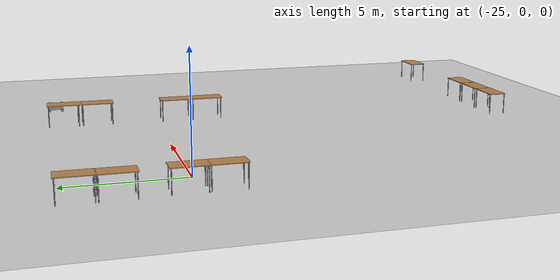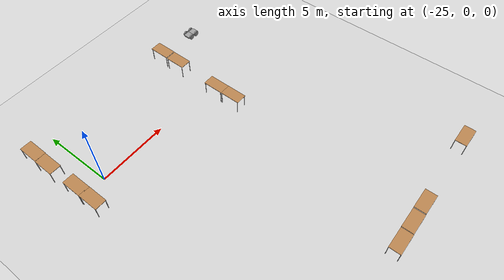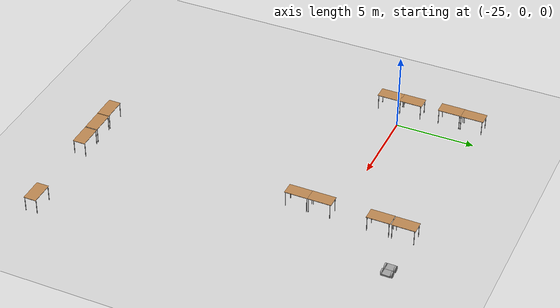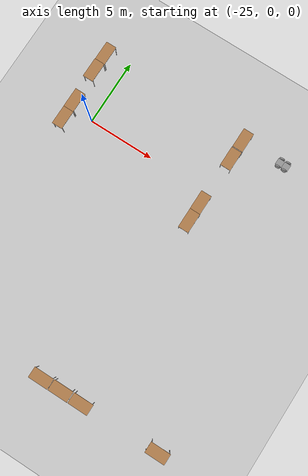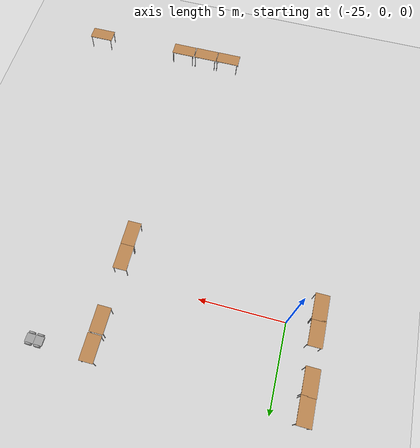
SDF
<sdf version="1.6">
 <world name="default">
  <model name="ground_plane">
   <static>1</static>
   <link name="link">
    <collision name="collision">
     <geometry><plane><normal>0 0 1</normal><size>100 100</size></plane></geometry>
     <surface><friction><ode><mu>100</mu><mu2>50</mu2></ode></friction></surface>
    </collision>
    <visual name="visual">
     <cast_shadows>0</cast_shadows>
     <geometry><plane><normal>0 0 1</normal><size>100 100</size></plane></geometry>
     <material>
      <script><uri>file://media/materials/scripts/gazebo.material</uri><name>Gazebo/Grey</name></script>
     </material>
    </visual>
   </link>
  </model>
  <model name="table_clone_12">
   <static>1</static>
   <link name="link">
    <collision name="surface">
     <pose>0 0 1 0 -0 0</pose>
     <geometry><box><size>1.5 0.8 0.03</size></box></geometry>
     <surface><friction><ode><mu>0.6</mu><mu2>0.6</mu2></ode></friction></surface>
    </collision>
    <visual name="visual1">
     <pose>0 0 1 0 -0 0</pose>
     <geometry><box><size>1.5 0.8 0.03</size></box></geometry>
     <material>
      <script><uri>file://media/materials/scripts/gazebo.material</uri><name>Gazebo/Wood</name></script>
     </material>
    </visual>
    <collision name="front_left_leg">
     <pose>0.68 0.38 0.5 0 -0 0</pose>
     <geometry><cylinder><radius>0.02</radius><length>1</length></cylinder></geometry>
    </collision>
    <visual name="front_left_leg">
     <pose>0.68 0.38 0.5 0 -0 0</pose>
     <geometry><cylinder><radius>0.02</radius><length>1</length></cylinder></geometry>
     <material>
      <script><uri>file://media/materials/scripts/gazebo.material</uri><name>Gazebo/Grey</name></script>
     </material>
    </visual>
    <collision name="front_right_leg">
     <pose>0.68 -0.38 0.5 0 -0 0</pose>
     <geometry><cylinder><radius>0.02</radius><length>1</length></cylinder></geometry>
    </collision>
    <visual name="front_right_leg">
     <pose>0.68 -0.38 0.5 0 -0 0</pose>
     <geometry><cylinder><radius>0.02</radius><length>1</length></cylinder></geometry>
     <material>
      <script><uri>file://media/materials/scripts/gazebo.material</uri><name>Gazebo/Grey</name></script>
     </material>
    </visual>
    <collision name="back_right_leg">
     <pose>-0.68 -0.38 0.5 0 -0 0</pose>
     <geometry><cylinder><radius>0.02</radius><length>1</length></cylinder></geometry>
    </collision>
    <visual name="back_right_leg">
     <pose>-0.68 -0.38 0.5 0 -0 0</pose>
     <geometry><cylinder><radius>0.02</radius><length>1</length></cylinder></geometry>
     <material>
      <script><uri>file://media/materials/scripts/gazebo.material</uri><name>Gazebo/Grey</name></script>
     </material>
    </visual>
    <collision name="back_left_leg">
     <pose>-0.68 0.38 0.5 0 -0 0</pose>
     <geometry><cylinder><radius>0.02</radius><length>1</length></cylinder></geometry>
    </collision>
    <visual name="back_left_leg">
     <pose>-0.68 0.38 0.5 0 -0 0</pose>
     <geometry><cylinder><radius>0.02</radius><length>1</length></cylinder></geometry>
     <material>
      <script><uri>file://media/materials/scripts/gazebo.material</uri><name>Gazebo/Grey</name></script>
     </material>
    </visual>
   </link>
   <pose>-8.90652 -16.3761 0 0 -0 0</pose>
  </model>
  <model name="table_clone_13">
   <static>1</static>
   <link name="link">
    <collision name="surface">
     <pose>0 0 1 0 -0 0</pose>
     <geometry><box><size>1.5 0.8 0.03</size></box></geometry>
     <surface><friction><ode><mu>0.6</mu><mu2>0.6</mu2></ode></friction></surface>
    </collision>
    <visual name="visual1">
     <pose>0 0 1 0 -0 0</pose>
     <geometry><box><size>1.5 0.8 0.03</size></box></geometry>
     <material>
      <script><uri>file://media/materials/scripts/gazebo.material</uri><name>Gazebo/Wood</name></script>
     </material>
    </visual>
    <collision name="front_left_leg">
     <pose>0.68 0.38 0.5 0 -0 0</pose>
     <geometry><cylinder><radius>0.02</radius><length>1</length></cylinder></geometry>
    </collision>
    <visual name="front_left_leg">
     <pose>0.68 0.38 0.5 0 -0 0</pose>
     <geometry><cylinder><radius>0.02</radius><length>1</length></cylinder></geometry>
     <material>
      <script><uri>file://media/materials/scripts/gazebo.material</uri><name>Gazebo/Grey</name></script>
     </material>
    </visual>
    <collision name="front_right_leg">
     <pose>0.68 -0.38 0.5 0 -0 0</pose>
     <geometry><cylinder><radius>0.02</radius><length>1</length></cylinder></geometry>
    </collision>
    <visual name="front_right_leg">
     <pose>0.68 -0.38 0.5 0 -0 0</pose>
     <geometry><cylinder><radius>0.02</radius><length>1</length></cylinder></geometry>
     <material>
      <script><uri>file://media/materials/scripts/gazebo.material</uri><name>Gazebo/Grey</name></script>
     </material>
    </visual>
    <collision name="back_right_leg">
     <pose>-0.68 -0.38 0.5 0 -0 0</pose>
     <geometry><cylinder><radius>0.02</radius><length>1</length></cylinder></geometry>
    </collision>
    <visual name="back_right_leg">
     <pose>-0.68 -0.38 0.5 0 -0 0</pose>
     <geometry><cylinder><radius>0.02</radius><length>1</length></cylinder></geometry>
     <material>
      <script><uri>file://media/materials/scripts/gazebo.material</uri><name>Gazebo/Grey</name></script>
     </material>
    </visual>
    <collision name="back_left_leg">
     <pose>-0.68 0.38 0.5 0 -0 0</pose>
     <geometry><cylinder><radius>0.02</radius><length>1</length></cylinder></geometry>
    </collision>
    <visual name="back_left_leg">
     <pose>-0.68 0.38 0.5 0 -0 0</pose>
     <geometry><cylinder><radius>0.02</radius><length>1</length></cylinder></geometry>
     <material>
      <script><uri>file://media/materials/scripts/gazebo.material</uri><name>Gazebo/Grey</name></script>
     </material>
    </visual>
   </link>
   <pose>-14.8044 -16.4759 0 0 -0 0</pose>
  </model>
  <model name="table_clone_14">
   <static>1</static>
   <link name="link">
    <collision name="surface">
     <pose>0 0 1 0 -0 0</pose>
     <geometry><box><size>1.5 0.8 0.03</size></box></geometry>
     <surface><friction><ode><mu>0.6</mu><mu2>0.6</mu2></ode></friction></surface>
    </collision>
    <visual name="visual1">
     <pose>0 0 1 0 -0 0</pose>
     <geometry><box><size>1.5 0.8 0.03</size></box></geometry>
     <material>
      <script><uri>file://media/materials/scripts/gazebo.material</uri><name>Gazebo/Wood</name></script>
     </material>
    </visual>
    <collision name="front_left_leg">
     <pose>0.68 0.38 0.5 0 -0 0</pose>
     <geometry><cylinder><radius>0.02</radius><length>1</length></cylinder></geometry>
    </collision>
    <visual name="front_left_leg">
     <pose>0.68 0.38 0.5 0 -0 0</pose>
     <geometry><cylinder><radius>0.02</radius><length>1</length></cylinder></geometry>
     <material>
      <script><uri>file://media/materials/scripts/gazebo.material</uri><name>Gazebo/Grey</name></script>
     </material>
    </visual>
    <collision name="front_right_leg">
     <pose>0.68 -0.38 0.5 0 -0 0</pose>
     <geometry><cylinder><radius>0.02</radius><length>1</length></cylinder></geometry>
    </collision>
    <visual name="front_right_leg">
     <pose>0.68 -0.38 0.5 0 -0 0</pose>
     <geometry><cylinder><radius>0.02</radius><length>1</length></cylinder></geometry>
     <material>
      <script><uri>file://media/materials/scripts/gazebo.material</uri><name>Gazebo/Grey</name></script>
     </material>
    </visual>
    <collision name="back_right_leg">
     <pose>-0.68 -0.38 0.5 0 -0 0</pose>
     <geometry><cylinder><radius>0.02</radius><length>1</length></cylinder></geometry>
    </collision>
    <visual name="back_right_leg">
     <pose>-0.68 -0.38 0.5 0 -0 0</pose>
     <geometry><cylinder><radius>0.02</radius><length>1</length></cylinder></geometry>
     <material>
      <script><uri>file://media/materials/scripts/gazebo.material</uri><name>Gazebo/Grey</name></script>
     </material>
    </visual>
    <collision name="back_left_leg">
     <pose>-0.68 0.38 0.5 0 -0 0</pose>
     <geometry><cylinder><radius>0.02</radius><length>1</length></cylinder></geometry>
    </collision>
    <visual name="back_left_leg">
     <pose>-0.68 0.38 0.5 0 -0 0</pose>
     <geometry><cylinder><radius>0.02</radius><length>1</length></cylinder></geometry>
     <material>
      <script><uri>file://media/materials/scripts/gazebo.material</uri><name>Gazebo/Grey</name></script>
     </material>
    </visual>
   </link>
   <pose>-16.3628 -16.486 0 0 -0 0</pose>
  </model>
  <model name="table_clone_15">
   <static>1</static>
   <link name="link">
    <collision name="surface">
     <pose>0 0 1 0 -0 0</pose>
     <geometry><box><size>1.5 0.8 0.03</size></box></geometry>
     <surface><friction><ode><mu>0.6</mu><mu2>0.6</mu2></ode></friction></surface>
    </collision>
    <visual name="visual1">
     <pose>0 0 1 0 -0 0</pose>
     <geometry><box><size>1.5 0.8 0.03</size></box></geometry>
     <material>
      <script><uri>file://media/materials/scripts/gazebo.material</uri><name>Gazebo/Wood</name></script>
     </material>
    </visual>
    <collision name="front_left_leg">
     <pose>0.68 0.38 0.5 0 -0 0</pose>
     <geometry><cylinder><radius>0.02</radius><length>1</length></cylinder></geometry>
    </collision>
    <visual name="front_left_leg">
     <pose>0.68 0.38 0.5 0 -0 0</pose>
     <geometry><cylinder><radius>0.02</radius><length>1</length></cylinder></geometry>
     <material>
      <script><uri>file://media/materials/scripts/gazebo.material</uri><name>Gazebo/Grey</name></script>
     </material>
    </visual>
    <collision name="front_right_leg">
     <pose>0.68 -0.38 0.5 0 -0 0</pose>
     <geometry><cylinder><radius>0.02</radius><length>1</length></cylinder></geometry>
    </collision>
    <visual name="front_right_leg">
     <pose>0.68 -0.38 0.5 0 -0 0</pose>
     <geometry><cylinder><radius>0.02</radius><length>1</length></cylinder></geometry>
     <material>
      <script><uri>file://media/materials/scripts/gazebo.material</uri><name>Gazebo/Grey</name></script>
     </material>
    </visual>
    <collision name="back_right_leg">
     <pose>-0.68 -0.38 0.5 0 -0 0</pose>
     <geometry><cylinder><radius>0.02</radius><length>1</length></cylinder></geometry>
    </collision>
    <visual name="back_right_leg">
     <pose>-0.68 -0.38 0.5 0 -0 0</pose>
     <geometry><cylinder><radius>0.02</radius><length>1</length></cylinder></geometry>
     <material>
      <script><uri>file://media/materials/scripts/gazebo.material</uri><name>Gazebo/Grey</name></script>
     </material>
    </visual>
    <collision name="back_left_leg">
     <pose>-0.68 0.38 0.5 0 -0 0</pose>
     <geometry><cylinder><radius>0.02</radius><length>1</length></cylinder></geometry>
    </collision>
    <visual name="back_left_leg">
     <pose>-0.68 0.38 0.5 0 -0 0</pose>
     <geometry><cylinder><radius>0.02</radius><length>1</length></cylinder></geometry>
     <material>
      <script><uri>file://media/materials/scripts/gazebo.material</uri><name>Gazebo/Grey</name></script>
     </material>
    </visual>
   </link>
   <pose>-17.8965 -16.4965 0 0 -0 0</pose>
  </model>
  <model name="table_clone_16">
   <static>1</static>
   <link name="link">
    <collision name="surface">
     <pose>0 0 1 0 -0 0</pose>
     <geometry><box><size>1.5 0.8 0.03</size></box></geometry>
     <surface><friction><ode><mu>0.6</mu><mu2>0.6</mu2></ode></friction></surface>
    </collision>
    <visual name="visual1">
     <pose>0 0 1 0 -0 0</pose>
     <geometry><box><size>1.5 0.8 0.03</size></box></geometry>
     <material>
      <script><uri>file://media/materials/scripts/gazebo.material</uri><name>Gazebo/Wood</name></script>
     </material>
    </visual>
    <collision name="front_left_leg">
     <pose>0.68 0.38 0.5 0 -0 0</pose>
     <geometry><cylinder><radius>0.02</radius><length>1</length></cylinder></geometry>
    </collision>
    <visual name="front_left_leg">
     <pose>0.68 0.38 0.5 0 -0 0</pose>
     <geometry><cylinder><radius>0.02</radius><length>1</length></cylinder></geometry>
     <material>
      <script><uri>file://media/materials/scripts/gazebo.material</uri><name>Gazebo/Grey</name></script>
     </material>
    </visual>
    <collision name="front_right_leg">
     <pose>0.68 -0.38 0.5 0 -0 0</pose>
     <geometry><cylinder><radius>0.02</radius><length>1</length></cylinder></geometry>
    </collision>
    <visual name="front_right_leg">
     <pose>0.68 -0.38 0.5 0 -0 0</pose>
     <geometry><cylinder><radius>0.02</radius><length>1</length></cylinder></geometry>
     <material>
      <script><uri>file://media/materials/scripts/gazebo.material</uri><name>Gazebo/Grey</name></script>
     </material>
    </visual>
    <collision name="back_right_leg">
     <pose>-0.68 -0.38 0.5 0 -0 0</pose>
     <geometry><cylinder><radius>0.02</radius><length>1</length></cylinder></geometry>
    </collision>
    <visual name="back_right_leg">
     <pose>-0.68 -0.38 0.5 0 -0 0</pose>
     <geometry><cylinder><radius>0.02</radius><length>1</length></cylinder></geometry>
     <material>
      <script><uri>file://media/materials/scripts/gazebo.material</uri><name>Gazebo/Grey</name></script>
     </material>
    </visual>
    <collision name="back_left_leg">
     <pose>-0.68 0.38 0.5 0 -0 0</pose>
     <geometry><cylinder><radius>0.02</radius><length>1</length></cylinder></geometry>
    </collision>
    <visual name="back_left_leg">
     <pose>-0.68 0.38 0.5 0 -0 0</pose>
     <geometry><cylinder><radius>0.02</radius><length>1</length></cylinder></geometry>
     <material>
      <script><uri>file://media/materials/scripts/gazebo.material</uri><name>Gazebo/Grey</name></script>
     </material>
    </visual>
   </link>
   <pose>-15.3265 -2.46132 0 0 0 -1.57408</pose>
  </model>
  <model name="table_clone_16_clone">
   <static>1</static>
   <link name="link">
    <collision name="surface">
     <pose>0 0 1 0 -0 0</pose>
     <geometry><box><size>1.5 0.8 0.03</size></box></geometry>
     <surface><friction><ode><mu>0.6</mu><mu2>0.6</mu2></ode></friction></surface>
    </collision>
    <visual name="visual1">
     <pose>0 0 1 0 -0 0</pose>
     <geometry><box><size>1.5 0.8 0.03</size></box></geometry>
     <material>
      <script><uri>file://media/materials/scripts/gazebo.material</uri><name>Gazebo/Wood</name></script>
     </material>
    </visual>
    <collision name="front_left_leg">
     <pose>0.68 0.38 0.5 0 -0 0</pose>
     <geometry><cylinder><radius>0.02</radius><length>1</length></cylinder></geometry>
    </collision>
    <visual name="front_left_leg">
     <pose>0.68 0.38 0.5 0 -0 0</pose>
     <geometry><cylinder><radius>0.02</radius><length>1</length></cylinder></geometry>
     <material>
      <script><uri>file://media/materials/scripts/gazebo.material</uri><name>Gazebo/Grey</name></script>
     </material>
    </visual>
    <collision name="front_right_leg">
     <pose>0.68 -0.38 0.5 0 -0 0</pose>
     <geometry><cylinder><radius>0.02</radius><length>1</length></cylinder></geometry>
    </collision>
    <visual name="front_right_leg">
     <pose>0.68 -0.38 0.5 0 -0 0</pose>
     <geometry><cylinder><radius>0.02</radius><length>1</length></cylinder></geometry>
     <material>
      <script><uri>file://media/materials/scripts/gazebo.material</uri><name>Gazebo/Grey</name></script>
     </material>
    </visual>
    <collision name="back_right_leg">
     <pose>-0.68 -0.38 0.5 0 -0 0</pose>
     <geometry><cylinder><radius>0.02</radius><length>1</length></cylinder></geometry>
    </collision>
    <visual name="back_right_leg">
     <pose>-0.68 -0.38 0.5 0 -0 0</pose>
     <geometry><cylinder><radius>0.02</radius><length>1</length></cylinder></geometry>
     <material>
      <script><uri>file://media/materials/scripts/gazebo.material</uri><name>Gazebo/Grey</name></script>
     </material>
    </visual>
    <collision name="back_left_leg">
     <pose>-0.68 0.38 0.5 0 -0 0</pose>
     <geometry><cylinder><radius>0.02</radius><length>1</length></cylinder></geometry>
    </collision>
    <visual name="back_left_leg">
     <pose>-0.68 0.38 0.5 0 -0 0</pose>
     <geometry><cylinder><radius>0.02</radius><length>1</length></cylinder></geometry>
     <material>
      <script><uri>file://media/materials/scripts/gazebo.material</uri><name>Gazebo/Grey</name></script>
     </material>
    </visual>
   </link>
   <pose>-15.3278 -0.996963 0 0 0 -1.57408</pose>
  </model>
  <model name="table_clone_16_clone_0">
   <static>1</static>
   <link name="link">
    <collision name="surface">
     <pose>0 0 1 0 -0 0</pose>
     <geometry><box><size>1.5 0.8 0.03</size></box></geometry>
     <surface><friction><ode><mu>0.6</mu><mu2>0.6</mu2></ode></friction></surface>
    </collision>
    <visual name="visual1">
     <pose>0 0 1 0 -0 0</pose>
     <geometry><box><size>1.5 0.8 0.03</size></box></geometry>
     <material>
      <script><uri>file://media/materials/scripts/gazebo.material</uri><name>Gazebo/Wood</name></script>
     </material>
    </visual>
    <collision name="front_left_leg">
     <pose>0.68 0.38 0.5 0 -0 0</pose>
     <geometry><cylinder><radius>0.02</radius><length>1</length></cylinder></geometry>
    </collision>
    <visual name="front_left_leg">
     <pose>0.68 0.38 0.5 0 -0 0</pose>
     <geometry><cylinder><radius>0.02</radius><length>1</length></cylinder></geometry>
     <material>
      <script><uri>file://media/materials/scripts/gazebo.material</uri><name>Gazebo/Grey</name></script>
     </material>
    </visual>
    <collision name="front_right_leg">
     <pose>0.68 -0.38 0.5 0 -0 0</pose>
     <geometry><cylinder><radius>0.02</radius><length>1</length></cylinder></geometry>
    </collision>
    <visual name="front_right_leg">
     <pose>0.68 -0.38 0.5 0 -0 0</pose>
     <geometry><cylinder><radius>0.02</radius><length>1</length></cylinder></geometry>
     <material>
      <script><uri>file://media/materials/scripts/gazebo.material</uri><name>Gazebo/Grey</name></script>
     </material>
    </visual>
    <collision name="back_right_leg">
     <pose>-0.68 -0.38 0.5 0 -0 0</pose>
     <geometry><cylinder><radius>0.02</radius><length>1</length></cylinder></geometry>
    </collision>
    <visual name="back_right_leg">
     <pose>-0.68 -0.38 0.5 0 -0 0</pose>
     <geometry><cylinder><radius>0.02</radius><length>1</length></cylinder></geometry>
     <material>
      <script><uri>file://media/materials/scripts/gazebo.material</uri><name>Gazebo/Grey</name></script>
     </material>
    </visual>
    <collision name="back_left_leg">
     <pose>-0.68 0.38 0.5 0 -0 0</pose>
     <geometry><cylinder><radius>0.02</radius><length>1</length></cylinder></geometry>
    </collision>
    <visual name="back_left_leg">
     <pose>-0.68 0.38 0.5 0 -0 0</pose>
     <geometry><cylinder><radius>0.02</radius><length>1</length></cylinder></geometry>
     <material>
      <script><uri>file://media/materials/scripts/gazebo.material</uri><name>Gazebo/Grey</name></script>
     </material>
    </visual>
   </link>
   <pose>-15.2082 2.71595 0 0 0 -1.57408</pose>
  </model>
  <model name="table_clone_16_clone_1">
   <static>1</static>
   <link name="link">
    <collision name="surface">
     <pose>0 0 1 0 -0 0</pose>
     <geometry><box><size>1.5 0.8 0.03</size></box></geometry>
     <surface><friction><ode><mu>0.6</mu><mu2>0.6</mu2></ode></friction></surface>
    </collision>
    <visual name="visual1">
     <pose>0 0 1 0 -0 0</pose>
     <geometry><box><size>1.5 0.8 0.03</size></box></geometry>
     <material>
      <script><uri>file://media/materials/scripts/gazebo.material</uri><name>Gazebo/Wood</name></script>
     </material>
    </visual>
    <collision name="front_left_leg">
     <pose>0.68 0.38 0.5 0 -0 0</pose>
     <geometry><cylinder><radius>0.02</radius><length>1</length></cylinder></geometry>
    </collision>
    <visual name="front_left_leg">
     <pose>0.68 0.38 0.5 0 -0 0</pose>
     <geometry><cylinder><radius>0.02</radius><length>1</length></cylinder></geometry>
     <material>
      <script><uri>file://media/materials/scripts/gazebo.material</uri><name>Gazebo/Grey</name></script>
     </material>
    </visual>
    <collision name="front_right_leg">
     <pose>0.68 -0.38 0.5 0 -0 0</pose>
     <geometry><cylinder><radius>0.02</radius><length>1</length></cylinder></geometry>
    </collision>
    <visual name="front_right_leg">
     <pose>0.68 -0.38 0.5 0 -0 0</pose>
     <geometry><cylinder><radius>0.02</radius><length>1</length></cylinder></geometry>
     <material>
      <script><uri>file://media/materials/scripts/gazebo.material</uri><name>Gazebo/Grey</name></script>
     </material>
    </visual>
    <collision name="back_right_leg">
     <pose>-0.68 -0.38 0.5 0 -0 0</pose>
     <geometry><cylinder><radius>0.02</radius><length>1</length></cylinder></geometry>
    </collision>
    <visual name="back_right_leg">
     <pose>-0.68 -0.38 0.5 0 -0 0</pose>
     <geometry><cylinder><radius>0.02</radius><length>1</length></cylinder></geometry>
     <material>
      <script><uri>file://media/materials/scripts/gazebo.material</uri><name>Gazebo/Grey</name></script>
     </material>
    </visual>
    <collision name="back_left_leg">
     <pose>-0.68 0.38 0.5 0 -0 0</pose>
     <geometry><cylinder><radius>0.02</radius><length>1</length></cylinder></geometry>
    </collision>
    <visual name="back_left_leg">
     <pose>-0.68 0.38 0.5 0 -0 0</pose>
     <geometry><cylinder><radius>0.02</radius><length>1</length></cylinder></geometry>
     <material>
      <script><uri>file://media/materials/scripts/gazebo.material</uri><name>Gazebo/Grey</name></script>
     </material>
    </visual>
   </link>
   <pose>-15.1862 4.26709 0 0 0 -1.57408</pose>
  </model>
  <model name="table_clone_16_clone_2">
   <static>1</static>
   <link name="link">
    <collision name="surface">
     <pose>0 0 1 0 -0 0</pose>
     <geometry><box><size>1.5 0.8 0.03</size></box></geometry>
     <surface><friction><ode><mu>0.6</mu><mu2>0.6</mu2></ode></friction></surface>
    </collision>
    <visual name="visual1">
     <pose>0 0 1 0 -0 0</pose>
     <geometry><box><size>1.5 0.8 0.03</size></box></geometry>
     <material>
      <script><uri>file://media/materials/scripts/gazebo.material</uri><name>Gazebo/Wood</name></script>
     </material>
    </visual>
    <collision name="front_left_leg">
     <pose>0.68 0.38 0.5 0 -0 0</pose>
     <geometry><cylinder><radius>0.02</radius><length>1</length></cylinder></geometry>
    </collision>
    <visual name="front_left_leg">
     <pose>0.68 0.38 0.5 0 -0 0</pose>
     <geometry><cylinder><radius>0.02</radius><length>1</length></cylinder></geometry>
     <material>
      <script><uri>file://media/materials/scripts/gazebo.material</uri><name>Gazebo/Grey</name></script>
     </material>
    </visual>
    <collision name="front_right_leg">
     <pose>0.68 -0.38 0.5 0 -0 0</pose>
     <geometry><cylinder><radius>0.02</radius><length>1</length></cylinder></geometry>
    </collision>
    <visual name="front_right_leg">
     <pose>0.68 -0.38 0.5 0 -0 0</pose>
     <geometry><cylinder><radius>0.02</radius><length>1</length></cylinder></geometry>
     <material>
      <script><uri>file://media/materials/scripts/gazebo.material</uri><name>Gazebo/Grey</name></script>
     </material>
    </visual>
    <collision name="back_right_leg">
     <pose>-0.68 -0.38 0.5 0 -0 0</pose>
     <geometry><cylinder><radius>0.02</radius><length>1</length></cylinder></geometry>
    </collision>
    <visual name="back_right_leg">
     <pose>-0.68 -0.38 0.5 0 -0 0</pose>
     <geometry><cylinder><radius>0.02</radius><length>1</length></cylinder></geometry>
     <material>
      <script><uri>file://media/materials/scripts/gazebo.material</uri><name>Gazebo/Grey</name></script>
     </material>
    </visual>
    <collision name="back_left_leg">
     <pose>-0.68 0.38 0.5 0 -0 0</pose>
     <geometry><cylinder><radius>0.02</radius><length>1</length></cylinder></geometry>
    </collision>
    <visual name="back_left_leg">
     <pose>-0.68 0.38 0.5 0 -0 0</pose>
     <geometry><cylinder><radius>0.02</radius><length>1</length></cylinder></geometry>
     <material>
      <script><uri>file://media/materials/scripts/gazebo.material</uri><name>Gazebo/Grey</name></script>
     </material>
    </visual>
   </link>
   <pose>-26.5552 0.399615 0 0 0 -1.57408</pose>
  </model>
  <model name="table_clone_16_clone_3">
   <static>1</static>
   <link name="link">
    <collision name="surface">
     <pose>0 0 1 0 -0 0</pose>
     <geometry><box><size>1.5 0.8 0.03</size></box></geometry>
     <surface><friction><ode><mu>0.6</mu><mu2>0.6</mu2></ode></friction></surface>
    </collision>
    <visual name="visual1">
     <pose>0 0 1 0 -0 0</pose>
     <geometry><box><size>1.5 0.8 0.03</size></box></geometry>
     <material>
      <script><uri>file://media/materials/scripts/gazebo.material</uri><name>Gazebo/Wood</name></script>
     </material>
    </visual>
    <collision name="front_left_leg">
     <pose>0.68 0.38 0.5 0 -0 0</pose>
     <geometry><cylinder><radius>0.02</radius><length>1</length></cylinder></geometry>
    </collision>
    <visual name="front_left_leg">
     <pose>0.68 0.38 0.5 0 -0 0</pose>
     <geometry><cylinder><radius>0.02</radius><length>1</length></cylinder></geometry>
     <material>
      <script><uri>file://media/materials/scripts/gazebo.material</uri><name>Gazebo/Grey</name></script>
     </material>
    </visual>
    <collision name="front_right_leg">
     <pose>0.68 -0.38 0.5 0 -0 0</pose>
     <geometry><cylinder><radius>0.02</radius><length>1</length></cylinder></geometry>
    </collision>
    <visual name="front_right_leg">
     <pose>0.68 -0.38 0.5 0 -0 0</pose>
     <geometry><cylinder><radius>0.02</radius><length>1</length></cylinder></geometry>
     <material>
      <script><uri>file://media/materials/scripts/gazebo.material</uri><name>Gazebo/Grey</name></script>
     </material>
    </visual>
    <collision name="back_right_leg">
     <pose>-0.68 -0.38 0.5 0 -0 0</pose>
     <geometry><cylinder><radius>0.02</radius><length>1</length></cylinder></geometry>
    </collision>
    <visual name="back_right_leg">
     <pose>-0.68 -0.38 0.5 0 -0 0</pose>
     <geometry><cylinder><radius>0.02</radius><length>1</length></cylinder></geometry>
     <material>
      <script><uri>file://media/materials/scripts/gazebo.material</uri><name>Gazebo/Grey</name></script>
     </material>
    </visual>
    <collision name="back_left_leg">
     <pose>-0.68 0.38 0.5 0 -0 0</pose>
     <geometry><cylinder><radius>0.02</radius><length>1</length></cylinder></geometry>
    </collision>
    <visual name="back_left_leg">
     <pose>-0.68 0.38 0.5 0 -0 0</pose>
     <geometry><cylinder><radius>0.02</radius><length>1</length></cylinder></geometry>
     <material>
      <script><uri>file://media/materials/scripts/gazebo.material</uri><name>Gazebo/Grey</name></script>
     </material>
    </visual>
   </link>
   <pose>-26.5524 -1.04166 0 0 0 -1.57408</pose>
  </model>
  <model name="table_clone_16_clone_4">
   <static>1</static>
   <link name="link">
    <collision name="surface">
     <pose>0 0 1 0 -0 0</pose>
     <geometry><box><size>1.5 0.8 0.03</size></box></geometry>
     <surface><friction><ode><mu>0.6</mu><mu2>0.6</mu2></ode></friction></surface>
    </collision>
    <visual name="visual1">
     <pose>0 0 1 0 -0 0</pose>
     <geometry><box><size>1.5 0.8 0.03</size></box></geometry>
     <material>
      <script><uri>file://media/materials/scripts/gazebo.material</uri><name>Gazebo/Wood</name></script>
     </material>
    </visual>
    <collision name="front_left_leg">
     <pose>0.68 0.38 0.5 0 -0 0</pose>
     <geometry><cylinder><radius>0.02</radius><length>1</length></cylinder></geometry>
    </collision>
    <visual name="front_left_leg">
     <pose>0.68 0.38 0.5 0 -0 0</pose>
     <geometry><cylinder><radius>0.02</radius><length>1</length></cylinder></geometry>
     <material>
      <script><uri>file://media/materials/scripts/gazebo.material</uri><name>Gazebo/Grey</name></script>
     </material>
    </visual>
    <collision name="front_right_leg">
     <pose>0.68 -0.38 0.5 0 -0 0</pose>
     <geometry><cylinder><radius>0.02</radius><length>1</length></cylinder></geometry>
    </collision>
    <visual name="front_right_leg">
     <pose>0.68 -0.38 0.5 0 -0 0</pose>
     <geometry><cylinder><radius>0.02</radius><length>1</length></cylinder></geometry>
     <material>
      <script><uri>file://media/materials/scripts/gazebo.material</uri><name>Gazebo/Grey</name></script>
     </material>
    </visual>
    <collision name="back_right_leg">
     <pose>-0.68 -0.38 0.5 0 -0 0</pose>
     <geometry><cylinder><radius>0.02</radius><length>1</length></cylinder></geometry>
    </collision>
    <visual name="back_right_leg">
     <pose>-0.68 -0.38 0.5 0 -0 0</pose>
     <geometry><cylinder><radius>0.02</radius><length>1</length></cylinder></geometry>
     <material>
      <script><uri>file://media/materials/scripts/gazebo.material</uri><name>Gazebo/Grey</name></script>
     </material>
    </visual>
    <collision name="back_left_leg">
     <pose>-0.68 0.38 0.5 0 -0 0</pose>
     <geometry><cylinder><radius>0.02</radius><length>1</length></cylinder></geometry>
    </collision>
    <visual name="back_left_leg">
     <pose>-0.68 0.38 0.5 0 -0 0</pose>
     <geometry><cylinder><radius>0.02</radius><length>1</length></cylinder></geometry>
     <material>
      <script><uri>file://media/materials/scripts/gazebo.material</uri><name>Gazebo/Grey</name></script>
     </material>
    </visual>
   </link>
   <pose>-26.637 2.94197 0 0 0 -1.57408</pose>
  </model>
  <model name="table_clone_16_clone_5">
   <static>1</static>
   <link name="link">
    <collision name="surface">
     <pose>0 0 1 0 -0 0</pose>
     <geometry><box><size>1.5 0.8 0.03</size></box></geometry>
     <surface><friction><ode><mu>0.6</mu><mu2>0.6</mu2></ode></friction></surface>
    </collision>
    <visual name="visual1">
     <pose>0 0 1 0 -0 0</pose>
     <geometry><box><size>1.5 0.8 0.03</size></box></geometry>
     <material>
      <script><uri>file://media/materials/scripts/gazebo.material</uri><name>Gazebo/Wood</name></script>
     </material>
    </visual>
    <collision name="front_left_leg">
     <pose>0.68 0.38 0.5 0 -0 0</pose>
     <geometry><cylinder><radius>0.02</radius><length>1</length></cylinder></geometry>
    </collision>
    <visual name="front_left_leg">
     <pose>0.68 0.38 0.5 0 -0 0</pose>
     <geometry><cylinder><radius>0.02</radius><length>1</length></cylinder></geometry>
     <material>
      <script><uri>file://media/materials/scripts/gazebo.material</uri><name>Gazebo/Grey</name></script>
     </material>
    </visual>
    <collision name="front_right_leg">
     <pose>0.68 -0.38 0.5 0 -0 0</pose>
     <geometry><cylinder><radius>0.02</radius><length>1</length></cylinder></geometry>
    </collision>
    <visual name="front_right_leg">
     <pose>0.68 -0.38 0.5 0 -0 0</pose>
     <geometry><cylinder><radius>0.02</radius><length>1</length></cylinder></geometry>
     <material>
      <script><uri>file://media/materials/scripts/gazebo.material</uri><name>Gazebo/Grey</name></script>
     </material>
    </visual>
    <collision name="back_right_leg">
     <pose>-0.68 -0.38 0.5 0 -0 0</pose>
     <geometry><cylinder><radius>0.02</radius><length>1</length></cylinder></geometry>
    </collision>
    <visual name="back_right_leg">
     <pose>-0.68 -0.38 0.5 0 -0 0</pose>
     <geometry><cylinder><radius>0.02</radius><length>1</length></cylinder></geometry>
     <material>
      <script><uri>file://media/materials/scripts/gazebo.material</uri><name>Gazebo/Grey</name></script>
     </material>
    </visual>
    <collision name="back_left_leg">
     <pose>-0.68 0.38 0.5 0 -0 0</pose>
     <geometry><cylinder><radius>0.02</radius><length>1</length></cylinder></geometry>
    </collision>
    <visual name="back_left_leg">
     <pose>-0.68 0.38 0.5 0 -0 0</pose>
     <geometry><cylinder><radius>0.02</radius><length>1</length></cylinder></geometry>
     <material>
      <script><uri>file://media/materials/scripts/gazebo.material</uri><name>Gazebo/Grey</name></script>
     </material>
    </visual>
   </link>
   <pose>-26.616 4.40634 0 0 0 -1.57408</pose>
  </model>
  <model name="lil_robot_clone">
   <link name="link_1">
    <inertial>
     <mass>1</mass>
     <inertia>
      <ixx>0.166667</ixx>
      <ixy>0</ixy>
      <ixz>0</ixz>
      <iyy>0.166667</iyy>
      <iyz>0</iyz>
      <izz>0.166667</izz>
     </inertia>
    </inertial>
    <pose>-0.159267 -0.015 -0.014999 0 -0 0</pose>
    <visual name="visual">
     <geometry><box><size>0.5 0.5 0.1</size></box></geometry>
     <material>
      <lighting>1</lighting>
      <script><uri>file://media/materials/scripts/gazebo.material</uri><name>Gazebo/Grey</name></script>
      <shader type="vertex"><normal_map>__default__</normal_map></shader>
      <ambient>0.3 0.3 0.3 1</ambient>
      <diffuse>0.7 0.7 0.7 1</diffuse>
      <specular>0.01 0.01 0.01 1</specular>
      <emissive>0 0 0 1</emissive>
     </material>
    </visual>
    <collision name="collision">
     <geometry><box><size>0.5 0.5 0.1</size></box></geometry>
     <surface>
      <friction>
       <ode><mu>1</mu><mu2>1</mu2><fdir1>0 0 0</fdir1><slip1>0</slip1><slip2>0</slip2></ode>
       <torsional>
        <coefficient>1</coefficient>
        <patch_radius>0</patch_radius>
        <surface_radius>0</surface_radius>
        <use_patch_radius>1</use_patch_radius>
        <ode><slip>0</slip></ode>
       </torsional>
      </friction>
      <bounce><restitution_coefficient>0</restitution_coefficient><threshold>1e+06</threshold></bounce>
      <contact>
       <collide_without_contact>0</collide_without_contact>
       <collide_without_contact_bitmask>1</collide_without_contact_bitmask>
       <collide_bitmask>1</collide_bitmask>
       <ode>
        <soft_cfm>0</soft_cfm>
        <soft_erp>0.2</soft_erp>
        <kp>1e+13</kp>
        <kd>1</kd>
        <max_vel>0.01</max_vel>
        <min_depth>0</min_depth>
       </ode>
       <bullet>
        <split_impulse>1</split_impulse>
        <split_impulse_penetration_threshold>-0.01</split_impulse_penetration_threshold>
        <soft_cfm>0</soft_cfm>
        <soft_erp>0.2</soft_erp>
        <kp>1e+13</kp>
        <kd>1</kd>
       </bullet>
      </contact>
     </surface>
    </collision>
   </link>
   <link name="link_1_clone">
    <inertial>
     <mass>1</mass>
     <inertia>
      <ixx>0.166667</ixx>
      <ixy>0</ixy>
      <ixz>0</ixz>
      <iyy>0.166667</iyy>
      <iyz>0</iyz>
      <izz>0.166667</izz>
     </inertia>
    </inertial>
    <pose>0.340733 -0.015 -0.014999 0 -0 0</pose>
    <visual name="visual">
     <geometry><box><size>0.5 0.5 0.1</size></box></geometry>
     <material>
      <lighting>1</lighting>
      <script><uri>file://media/materials/scripts/gazebo.material</uri><name>Gazebo/Grey</name></script>
      <shader type="vertex"><normal_map>__default__</normal_map></shader>
      <ambient>0.3 0.3 0.3 1</ambient>
      <diffuse>0.7 0.7 0.7 1</diffuse>
      <specular>0.01 0.01 0.01 1</specular>
      <emissive>0 0 0 1</emissive>
     </material>
    </visual>
    <collision name="collision">
     <geometry><box><size>0.5 0.5 0.1</size></box></geometry>
     <surface>
      <friction>
       <ode><mu>1</mu><mu2>1</mu2><fdir1>0 0 0</fdir1><slip1>0</slip1><slip2>0</slip2></ode>
       <torsional>
        <coefficient>1</coefficient>
        <patch_radius>0</patch_radius>
        <surface_radius>0</surface_radius>
        <use_patch_radius>1</use_patch_radius>
        <ode><slip>0</slip></ode>
       </torsional>
      </friction>
      <bounce><restitution_coefficient>0</restitution_coefficient><threshold>1e+06</threshold></bounce>
      <contact>
       <collide_without_contact>0</collide_without_contact>
       <collide_without_contact_bitmask>1</collide_without_contact_bitmask>
       <collide_bitmask>1</collide_bitmask>
       <ode>
        <soft_cfm>0</soft_cfm>
        <soft_erp>0.2</soft_erp>
        <kp>1e+13</kp>
        <kd>1</kd>
        <max_vel>0.01</max_vel>
        <min_depth>0</min_depth>
       </ode>
       <bullet>
        <split_impulse>1</split_impulse>
        <split_impulse_penetration_threshold>-0.01</split_impulse_penetration_threshold>
        <soft_cfm>0</soft_cfm>
        <soft_erp>0.2</soft_erp>
        <kp>1e+13</kp>
        <kd>1</kd>
       </bullet>
      </contact>
     </surface>
    </collision>
   </link>
   <link name="link_2_clone">
    <inertial>
     <mass>1</mass>
     <inertia><ixx>0.145833</ixx><ixy>0</ixy><ixz>0</ixz><iyy>0.145833</iyy><iyz>0</iyz><izz>0.125</izz></inertia>
    </inertial>
    <pose>0.340733 0.285019 -0.014999 1.5707 -0 0</pose>
    <visual name="visual">
     <geometry><cylinder><radius>0.2</radius><length>0.1</length></cylinder></geometry>
     <material>
      <lighting>1</lighting>
      <script><uri>file://media/materials/scripts/gazebo.material</uri><name>Gazebo/Grey</name></script>
      <shader type="vertex"><normal_map>__default__</normal_map></shader>
      <ambient>0.3 0.3 0.3 1</ambient>
      <diffuse>0.7 0.7 0.7 1</diffuse>
      <specular>0.01 0.01 0.01 1</specular>
      <emissive>0 0 0 1</emissive>
     </material>
    </visual>
    <collision name="collision">
     <geometry><cylinder><radius>0.2</radius><length>0.1</length></cylinder></geometry>
     <surface>
      <friction>
       <ode><mu>1</mu><mu2>1</mu2><fdir1>0 0 0</fdir1><slip1>0</slip1><slip2>0</slip2></ode>
       <torsional>
        <coefficient>1</coefficient>
        <patch_radius>0</patch_radius>
        <surface_radius>0</surface_radius>
        <use_patch_radius>1</use_patch_radius>
        <ode><slip>0</slip></ode>
       </torsional>
      </friction>
      <bounce><restitution_coefficient>0</restitution_coefficient><threshold>1e+06</threshold></bounce>
      <contact>
       <collide_without_contact>0</collide_without_contact>
       <collide_without_contact_bitmask>1</collide_without_contact_bitmask>
       <collide_bitmask>1</collide_bitmask>
       <ode>
        <soft_cfm>0</soft_cfm>
        <soft_erp>0.2</soft_erp>
        <kp>1e+13</kp>
        <kd>1</kd>
        <max_vel>0.01</max_vel>
        <min_depth>0</min_depth>
       </ode>
       <bullet>
        <split_impulse>1</split_impulse>
        <split_impulse_penetration_threshold>-0.01</split_impulse_penetration_threshold>
        <soft_cfm>0</soft_cfm>
        <soft_erp>0.2</soft_erp>
        <kp>1e+13</kp>
        <kd>1</kd>
       </bullet>
      </contact>
     </surface>
    </collision>
   </link>
   <link name="link_2_clone_clone">
    <inertial>
     <mass>1</mass>
     <inertia><ixx>0.145833</ixx><ixy>0</ixy><ixz>0</ixz><iyy>0.145833</iyy><iyz>0</iyz><izz>0.125</izz></inertia>
    </inertial>
    <pose>0.340733 -0.315019 -0.014999 1.5707 -0 0</pose>
    <visual name="visual">
     <geometry><cylinder><radius>0.2</radius><length>0.1</length></cylinder></geometry>
     <material>
      <lighting>1</lighting>
      <script><uri>file://media/materials/scripts/gazebo.material</uri><name>Gazebo/Grey</name></script>
      <shader type="vertex"><normal_map>__default__</normal_map></shader>
      <ambient>0.3 0.3 0.3 1</ambient>
      <diffuse>0.7 0.7 0.7 1</diffuse>
      <specular>0.01 0.01 0.01 1</specular>
      <emissive>0 0 0 1</emissive>
     </material>
    </visual>
    <collision name="collision">
     <geometry><cylinder><radius>0.2</radius><length>0.1</length></cylinder></geometry>
     <surface>
      <friction>
       <ode><mu>1</mu><mu2>1</mu2><fdir1>0 0 0</fdir1><slip1>0</slip1><slip2>0</slip2></ode>
       <torsional>
        <coefficient>1</coefficient>
        <patch_radius>0</patch_radius>
        <surface_radius>0</surface_radius>
        <use_patch_radius>1</use_patch_radius>
        <ode><slip>0</slip></ode>
       </torsional>
      </friction>
      <bounce><restitution_coefficient>0</restitution_coefficient><threshold>1e+06</threshold></bounce>
      <contact>
       <collide_without_contact>0</collide_without_contact>
       <collide_without_contact_bitmask>1</collide_without_contact_bitmask>
       <collide_bitmask>1</collide_bitmask>
       <ode>
        <soft_cfm>0</soft_cfm>
        <soft_erp>0.2</soft_erp>
        <kp>1e+13</kp>
        <kd>1</kd>
        <max_vel>0.01</max_vel>
        <min_depth>0</min_depth>
       </ode>
       <bullet>
        <split_impulse>1</split_impulse>
        <split_impulse_penetration_threshold>-0.01</split_impulse_penetration_threshold>
        <soft_cfm>0</soft_cfm>
        <soft_erp>0.2</soft_erp>
        <kp>1e+13</kp>
        <kd>1</kd>
       </bullet>
      </contact>
     </surface>
    </collision>
   </link>
   <link name="link_2_clone_clone_0">
    <inertial>
     <mass>1</mass>
     <inertia><ixx>0.145833</ixx><ixy>0</ixy><ixz>0</ixz><iyy>0.145833</iyy><iyz>0</iyz><izz>0.125</izz></inertia>
    </inertial>
    <pose>-0.159267 0.285019 -0.014999 1.5707 -0 0</pose>
    <visual name="visual">
     <geometry><cylinder><radius>0.2</radius><length>0.1</length></cylinder></geometry>
     <material>
      <lighting>1</lighting>
      <script><uri>file://media/materials/scripts/gazebo.material</uri><name>Gazebo/Grey</name></script>
      <shader type="vertex"><normal_map>__default__</normal_map></shader>
      <ambient>0.3 0.3 0.3 1</ambient>
      <diffuse>0.7 0.7 0.7 1</diffuse>
      <specular>0.01 0.01 0.01 1</specular>
      <emissive>0 0 0 1</emissive>
     </material>
    </visual>
    <collision name="collision">
     <geometry><cylinder><radius>0.2</radius><length>0.1</length></cylinder></geometry>
     <surface>
      <friction>
       <ode><mu>1</mu><mu2>1</mu2><fdir1>0 0 0</fdir1><slip1>0</slip1><slip2>0</slip2></ode>
       <torsional>
        <coefficient>1</coefficient>
        <patch_radius>0</patch_radius>
        <surface_radius>0</surface_radius>
        <use_patch_radius>1</use_patch_radius>
        <ode><slip>0</slip></ode>
       </torsional>
      </friction>
      <bounce><restitution_coefficient>0</restitution_coefficient><threshold>1e+06</threshold></bounce>
      <contact>
       <collide_without_contact>0</collide_without_contact>
       <collide_without_contact_bitmask>1</collide_without_contact_bitmask>
       <collide_bitmask>1</collide_bitmask>
       <ode>
        <soft_cfm>0</soft_cfm>
        <soft_erp>0.2</soft_erp>
        <kp>1e+13</kp>
        <kd>1</kd>
        <max_vel>0.01</max_vel>
        <min_depth>0</min_depth>
       </ode>
       <bullet>
        <split_impulse>1</split_impulse>
        <split_impulse_penetration_threshold>-0.01</split_impulse_penetration_threshold>
        <soft_cfm>0</soft_cfm>
        <soft_erp>0.2</soft_erp>
        <kp>1e+13</kp>
        <kd>1</kd>
       </bullet>
      </contact>
     </surface>
    </collision>
   </link>
   <link name="link_2_clone_clone_1">
    <inertial>
     <mass>1</mass>
     <inertia><ixx>0.145833</ixx><ixy>0</ixy><ixz>0</ixz><iyy>0.145833</iyy><iyz>0</iyz><izz>0.125</izz></inertia>
    </inertial>
    <pose>-0.159267 -0.315019 -0.014999 1.5707 -0 0</pose>
    <visual name="visual">
     <geometry><cylinder><radius>0.2</radius><length>0.1</length></cylinder></geometry>
     <material>
      <lighting>1</lighting>
      <script><uri>file://media/materials/scripts/gazebo.material</uri><name>Gazebo/Grey</name></script>
      <shader type="vertex"><normal_map>__default__</normal_map></shader>
      <ambient>0.3 0.3 0.3 1</ambient>
      <diffuse>0.7 0.7 0.7 1</diffuse>
      <specular>0.01 0.01 0.01 1</specular>
      <emissive>0 0 0 1</emissive>
     </material>
    </visual>
    <collision name="collision">
     <geometry><cylinder><radius>0.2</radius><length>0.1</length></cylinder></geometry>
     <surface>
      <friction>
       <ode><mu>1</mu><mu2>1</mu2><fdir1>0 0 0</fdir1><slip1>0</slip1><slip2>0</slip2></ode>
       <torsional>
        <coefficient>1</coefficient>
        <patch_radius>0</patch_radius>
        <surface_radius>0</surface_radius>
        <use_patch_radius>1</use_patch_radius>
        <ode><slip>0</slip></ode>
       </torsional>
      </friction>
      <bounce><restitution_coefficient>0</restitution_coefficient><threshold>1e+06</threshold></bounce>
      <contact>
       <collide_without_contact>0</collide_without_contact>
       <collide_without_contact_bitmask>1</collide_without_contact_bitmask>
       <collide_bitmask>1</collide_bitmask>
       <ode>
        <soft_cfm>0</soft_cfm>
        <soft_erp>0.2</soft_erp>
        <kp>1e+13</kp>
        <kd>1</kd>
        <max_vel>0.01</max_vel>
        <min_depth>0</min_depth>
       </ode>
       <bullet>
        <split_impulse>1</split_impulse>
        <split_impulse_penetration_threshold>-0.01</split_impulse_penetration_threshold>
        <soft_cfm>0</soft_cfm>
        <soft_erp>0.2</soft_erp>
        <kp>1e+13</kp>
        <kd>1</kd>
       </bullet>
      </contact>
     </surface>
    </collision>
   </link>
   <joint name="link_1_JOINT_1" type="fixed">
    <parent>link_1</parent>
    <child>link_1_clone</child>
    <physics>
     <ode><limit><cfm>0</cfm><erp>0.2</erp></limit><suspension><cfm>0</cfm><erp>0.2</erp></suspension></ode>
    </physics>
   </joint>
   <joint name="link_1_JOINT_3" type="revolute">
    <parent>link_1</parent>
    <child>link_2_clone_clone_0</child>
    <axis>
     <xyz>0 0 1</xyz>
     <use_parent_model_frame>0</use_parent_model_frame>
     <limit>
      <lower>-1.79769e+308</lower>
      <upper>1.79769e+308</upper>
      <effort>-1</effort>
      <velocity>-1</velocity>
     </limit>
     <dynamics>
      <spring_reference>0</spring_reference>
      <spring_stiffness>0</spring_stiffness>
      <damping>0</damping>
     </dynamics>
    </axis>
    <physics>
     <ode><limit><cfm>0</cfm><erp>0.2</erp></limit><suspension><cfm>0</cfm><erp>0.2</erp></suspension></ode>
    </physics>
   </joint>
   <joint name="link_1_JOINT_4" type="revolute">
    <parent>link_1</parent>
    <child>link_2_clone_clone_1</child>
    <axis>
     <xyz>0 0 1</xyz>
     <use_parent_model_frame>0</use_parent_model_frame>
     <limit>
      <lower>-1.79769e+308</lower>
      <upper>1.79769e+308</upper>
      <effort>-1</effort>
      <velocity>-1</velocity>
     </limit>
     <dynamics>
      <spring_reference>0</spring_reference>
      <spring_stiffness>0</spring_stiffness>
      <damping>0</damping>
     </dynamics>
    </axis>
    <physics>
     <ode><limit><cfm>0</cfm><erp>0.2</erp></limit><suspension><cfm>0</cfm><erp>0.2</erp></suspension></ode>
    </physics>
   </joint>
   <joint name="link_1_clone_JOINT_4" type="revolute">
    <parent>link_1_clone</parent>
    <child>link_2_clone</child>
    <axis>
     <xyz>0 0 1</xyz>
     <use_parent_model_frame>0</use_parent_model_frame>
     <limit>
      <lower>-1.79769e+308</lower>
      <upper>1.79769e+308</upper>
      <effort>-1</effort>
      <velocity>-1</velocity>
     </limit>
     <dynamics>
      <spring_reference>0</spring_reference>
      <spring_stiffness>0</spring_stiffness>
      <damping>0</damping>
      <friction>0</friction>
     </dynamics>
    </axis>
    <physics>
     <ode><limit><cfm>0</cfm><erp>0.2</erp></limit><suspension><cfm>0</cfm><erp>0.2</erp></suspension></ode>
    </physics>
   </joint>
   <joint name="link_1_clone_JOINT_5" type="revolute">
    <parent>link_1_clone</parent>
    <child>link_2_clone_clone</child>
    <axis>
     <xyz>0 0 1</xyz>
     <use_parent_model_frame>0</use_parent_model_frame>
     <limit>
      <lower>-1.79769e+308</lower>
      <upper>1.79769e+308</upper>
      <effort>-1</effort>
      <velocity>-1</velocity>
     </limit>
     <dynamics>
      <spring_reference>0</spring_reference>
      <spring_stiffness>0</spring_stiffness>
      <damping>0</damping>
      <friction>0</friction>
     </dynamics>
    </axis>
    <physics>
     <ode><limit><cfm>0</cfm><erp>0.2</erp></limit><suspension><cfm>0</cfm><erp>0.2</erp></suspension></ode>
    </physics>
   </joint>
   <static>0</static>
   <pose>-12.05 4.53998 0.215004 0 0 -0.014285</pose>
  </model>
 </world>
</sdf>
